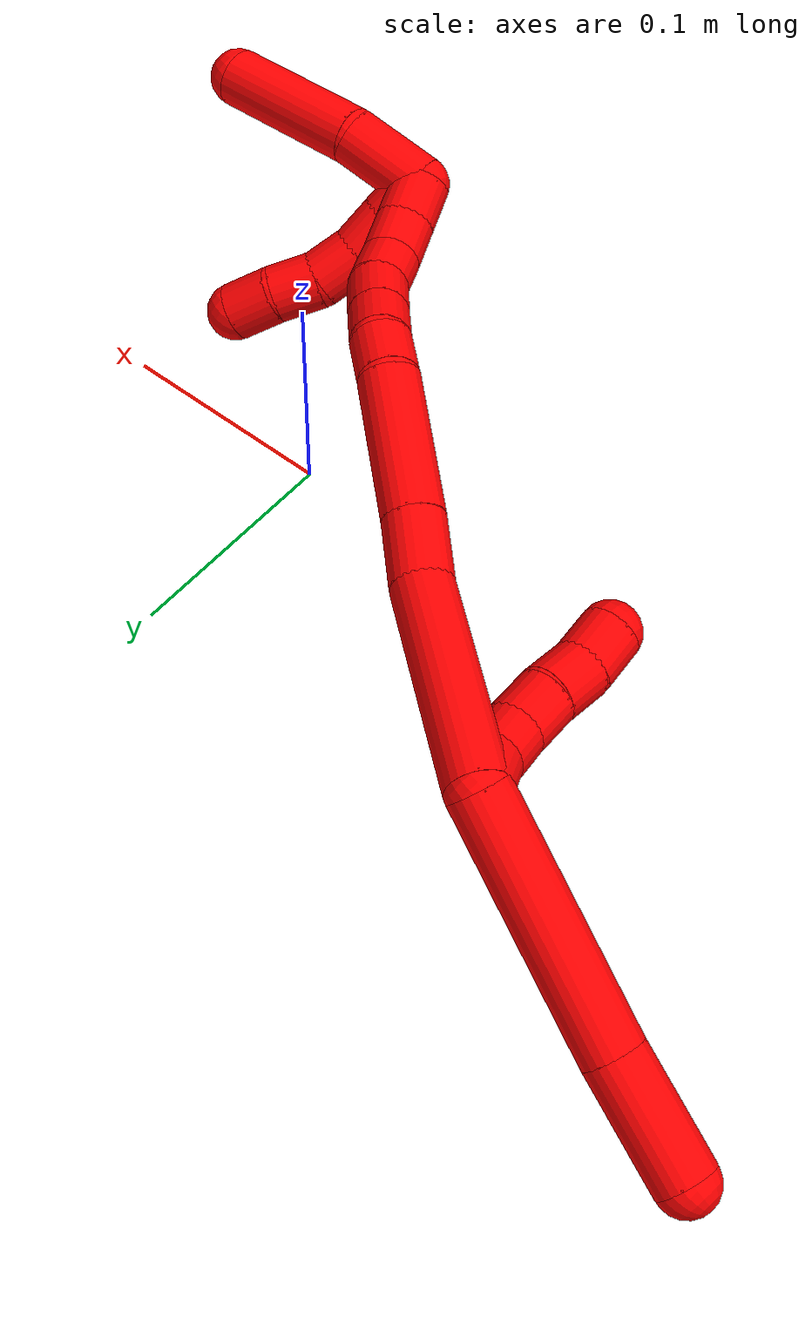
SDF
<sdf version="1.7">
 <world name="default">
  <model name="2">
   <static>0</static>
   <link name="2">
    <collision name="collision-cylinder-e_1_2_8">
     <pose>-0.003086 -0.016675 0.047732 0.336101 -0.060952 -0.010344</pose>
     <geometry><cylinder><radius>0.0125</radius><length>0.10131</length></cylinder></geometry>
     <surface>
      <friction><ode><mu>1.16</mu><mu2>1.16</mu2><slip1>0</slip1><slip2>0</slip2></ode></friction>
      <contact><ode><kp>1e+06</kp><kd>1</kd><max_vel>0</max_vel><min_depth>0.001</min_depth></ode></contact>
     </surface>
    </collision>
    <visual name="visual-cylinder-e_1_2_8">
     <pose>-0.003086 -0.016675 0.047732 0.336101 -0.060952 -0.010344</pose>
     <geometry><cylinder><radius>0.0125</radius><length>0.10131</length></cylinder></geometry>
     <material><ambient>1 0 0 1</ambient></material>
    </visual>
    <collision name="collision-cylinder-e_2_8_6">
     <pose>-0.008304 -0.039018 0.119044 0.235843 -0.087707 -0.010397</pose>
     <geometry><cylinder><radius>0.0125</radius><length>0.04869</length></cylinder></geometry>
     <surface>
      <friction><ode><mu>1.16</mu><mu2>1.16</mu2><slip1>0</slip1><slip2>0</slip2></ode></friction>
      <contact><ode><kp>1e+06</kp><kd>1</kd><max_vel>0</max_vel><min_depth>0.001</min_depth></ode></contact>
     </surface>
    </collision>
    <visual name="visual-cylinder-e_2_8_6">
     <pose>-0.008304 -0.039018 0.119044 0.235843 -0.087707 -0.010397</pose>
     <geometry><cylinder><radius>0.0125</radius><length>0.04869</length></cylinder></geometry>
     <material><ambient>1 0 0 1</ambient></material>
    </visual>
    <collision name="collision-cylinder-e_1_2_9">
     <pose>0.009045 -0.002629 -0.003358 2.47724 1.13021 2.14511</pose>
     <geometry><cylinder><radius>0.0125</radius><length>0.02</length></cylinder></geometry>
     <surface>
      <friction><ode><mu>1.16</mu><mu2>1.16</mu2><slip1>0</slip1><slip2>0</slip2></ode></friction>
      <contact><ode><kp>1e+06</kp><kd>1</kd><max_vel>0</max_vel><min_depth>0.001</min_depth></ode></contact>
     </surface>
    </collision>
    <visual name="visual-cylinder-e_1_2_9">
     <pose>0.009045 -0.002629 -0.003358 2.47724 1.13021 2.14511</pose>
     <geometry><cylinder><radius>0.0125</radius><length>0.02</length></cylinder></geometry>
     <material><ambient>1 0 0 1</ambient></material>
    </visual>
    <collision name="collision-cylinder-e_2_9_10">
     <pose>0.027907 -0.005641 -0.008582 2.93981 1.37904 2.89726</pose>
     <geometry><cylinder><radius>0.0125</radius><length>0.02</length></cylinder></geometry>
     <surface>
      <friction><ode><mu>1.16</mu><mu2>1.16</mu2><slip1>0</slip1><slip2>0</slip2></ode></friction>
      <contact><ode><kp>1e+06</kp><kd>1</kd><max_vel>0</max_vel><min_depth>0.001</min_depth></ode></contact>
     </surface>
    </collision>
    <visual name="visual-cylinder-e_2_9_10">
     <pose>0.027907 -0.005641 -0.008582 2.93981 1.37904 2.89726</pose>
     <geometry><cylinder><radius>0.0125</radius><length>0.02</length></cylinder></geometry>
     <material><ambient>1 0 0 1</ambient></material>
    </visual>
    <collision name="collision-cylinder-e_3_10_11">
     <pose>0.047244 -0.003204 -0.011638 -1.96988 1.25996 -1.6648</pose>
     <geometry><cylinder><radius>0.0125</radius><length>0.02</length></cylinder></geometry>
     <surface>
      <friction><ode><mu>1.16</mu><mu2>1.16</mu2><slip1>0</slip1><slip2>0</slip2></ode></friction>
      <contact><ode><kp>1e+06</kp><kd>1</kd><max_vel>0</max_vel><min_depth>0.001</min_depth></ode></contact>
     </surface>
    </collision>
    <visual name="visual-cylinder-e_3_10_11">
     <pose>0.047244 -0.003204 -0.011638 -1.96988 1.25996 -1.6648</pose>
     <geometry><cylinder><radius>0.0125</radius><length>0.02</length></cylinder></geometry>
     <material><ambient>1 0 0 1</ambient></material>
    </visual>
    <collision name="collision-cylinder-e_4_11_12">
     <pose>0.066621 0.001293 -0.013005 -1.67676 1.40109 -1.50647</pose>
     <geometry><cylinder><radius>0.0125</radius><length>0.02</length></cylinder></geometry>
     <surface>
      <friction><ode><mu>1.16</mu><mu2>1.16</mu2><slip1>0</slip1><slip2>0</slip2></ode></friction>
      <contact><ode><kp>1e+06</kp><kd>1</kd><max_vel>0</max_vel><min_depth>0.001</min_depth></ode></contact>
     </surface>
    </collision>
    <visual name="visual-cylinder-e_4_11_12">
     <pose>0.066621 0.001293 -0.013005 -1.67676 1.40109 -1.50647</pose>
     <geometry><cylinder><radius>0.0125</radius><length>0.02</length></cylinder></geometry>
     <material><ambient>1 0 0 1</ambient></material>
    </visual>
    <collision name="collision-cylinder-e_5_12_5">
     <pose>0.085825 0.006009 -0.015029 -2.11677 1.20754 -1.7732</pose>
     <geometry><cylinder><radius>0.0125</radius><length>0.02</length></cylinder></geometry>
     <surface>
      <friction><ode><mu>1.16</mu><mu2>1.16</mu2><slip1>0</slip1><slip2>0</slip2></ode></friction>
      <contact><ode><kp>1e+06</kp><kd>1</kd><max_vel>0</max_vel><min_depth>0.001</min_depth></ode></contact>
     </surface>
    </collision>
    <visual name="visual-cylinder-e_5_12_5">
     <pose>0.085825 0.006009 -0.015029 -2.11677 1.20754 -1.7732</pose>
     <geometry><cylinder><radius>0.0125</radius><length>0.02</length></cylinder></geometry>
     <material><ambient>1 0 0 1</ambient></material>
    </visual>
    <collision name="collision-cylinder-e_1_2_13">
     <pose>0.024346 -0.000176 -0.036475 3.13678 0.588551 3.1257</pose>
     <geometry><cylinder><radius>0.0125</radius><length>0.087707</length></cylinder></geometry>
     <surface>
      <friction><ode><mu>1.16</mu><mu2>1.16</mu2><slip1>0</slip1><slip2>0</slip2></ode></friction>
      <contact><ode><kp>1e+06</kp><kd>1</kd><max_vel>0</max_vel><min_depth>0.001</min_depth></ode></contact>
     </surface>
    </collision>
    <visual name="visual-cylinder-e_1_2_13">
     <pose>0.024346 -0.000176 -0.036475 3.13678 0.588551 3.1257</pose>
     <geometry><cylinder><radius>0.0125</radius><length>0.087707</length></cylinder></geometry>
     <material><ambient>1 0 0 1</ambient></material>
    </visual>
    <collision name="collision-cylinder-e_2_13_14">
     <pose>0.056588 0.00232 -0.08426 -2.90965 0.596793 -2.41751</pose>
     <geometry><cylinder><radius>0.0125</radius><length>0.028103</length></cylinder></geometry>
     <surface>
      <friction><ode><mu>1.16</mu><mu2>1.16</mu2><slip1>0</slip1><slip2>0</slip2></ode></friction>
      <contact><ode><kp>1e+06</kp><kd>1</kd><max_vel>0</max_vel><min_depth>0.001</min_depth></ode></contact>
     </surface>
    </collision>
    <visual name="visual-cylinder-e_2_13_14">
     <pose>0.056588 0.00232 -0.08426 -2.90965 0.596793 -2.41751</pose>
     <geometry><cylinder><radius>0.0125</radius><length>0.028103</length></cylinder></geometry>
     <material><ambient>1 0 0 1</ambient></material>
    </visual>
    <collision name="collision-cylinder-e_3_14_15">
     <pose>0.080836 0.010378 -0.121259 -2.9349 0.557161 -2.44584</pose>
     <geometry><cylinder><radius>0.0125</radius><length>0.061846</length></cylinder></geometry>
     <surface>
      <friction><ode><mu>1.16</mu><mu2>1.16</mu2><slip1>0</slip1><slip2>0</slip2></ode></friction>
      <contact><ode><kp>1e+06</kp><kd>1</kd><max_vel>0</max_vel><min_depth>0.001</min_depth></ode></contact>
     </surface>
    </collision>
    <visual name="visual-cylinder-e_3_14_15">
     <pose>0.080836 0.010378 -0.121259 -2.9349 0.557161 -2.44584</pose>
     <geometry><cylinder><radius>0.0125</radius><length>0.061846</length></cylinder></geometry>
     <material><ambient>1 0 0 1</ambient></material>
    </visual>
    <collision name="collision-cylinder-e_4_15_16">
     <pose>0.103423 0.015565 -0.155057 3.11697 0.655365 3.06918</pose>
     <geometry><cylinder><radius>0.0125</radius><length>0.020464</length></cylinder></geometry>
     <surface>
      <friction><ode><mu>1.16</mu><mu2>1.16</mu2><slip1>0</slip1><slip2>0</slip2></ode></friction>
      <contact><ode><kp>1e+06</kp><kd>1</kd><max_vel>0</max_vel><min_depth>0.001</min_depth></ode></contact>
     </surface>
    </collision>
    <visual name="visual-cylinder-e_4_15_16">
     <pose>0.103423 0.015565 -0.155057 3.11697 0.655365 3.06918</pose>
     <geometry><cylinder><radius>0.0125</radius><length>0.020464</length></cylinder></geometry>
     <material><ambient>1 0 0 1</ambient></material>
    </visual>
    <collision name="collision-cylinder-e_5_16_17">
     <pose>0.117134 0.013515 -0.169742 2.86727 0.830377 2.53469</pose>
     <geometry><cylinder><radius>0.0125</radius><length>0.020252</length></cylinder></geometry>
     <surface>
      <friction><ode><mu>1.16</mu><mu2>1.16</mu2><slip1>0</slip1><slip2>0</slip2></ode></friction>
      <contact><ode><kp>1e+06</kp><kd>1</kd><max_vel>0</max_vel><min_depth>0.001</min_depth></ode></contact>
     </surface>
    </collision>
    <visual name="visual-cylinder-e_5_16_17">
     <pose>0.117134 0.013515 -0.169742 2.86727 0.830377 2.53469</pose>
     <geometry><cylinder><radius>0.0125</radius><length>0.020252</length></cylinder></geometry>
     <material><ambient>1 0 0 1</ambient></material>
    </visual>
    <collision name="collision-cylinder-e_6_17_18">
     <pose>0.132589 0.009902 -0.18311 2.88769 0.849488 2.59147</pose>
     <geometry><cylinder><radius>0.0125</radius><length>0.021254</length></cylinder></geometry>
     <surface>
      <friction><ode><mu>1.16</mu><mu2>1.16</mu2><slip1>0</slip1><slip2>0</slip2></ode></friction>
      <contact><ode><kp>1e+06</kp><kd>1</kd><max_vel>0</max_vel><min_depth>0.001</min_depth></ode></contact>
     </surface>
    </collision>
    <visual name="visual-cylinder-e_6_17_18">
     <pose>0.132589 0.009902 -0.18311 2.88769 0.849488 2.59147</pose>
     <geometry><cylinder><radius>0.0125</radius><length>0.021254</length></cylinder></geometry>
     <material><ambient>1 0 0 1</ambient></material>
    </visual>
    <collision name="collision-cylinder-e_7_18_19">
     <pose>0.14957 0.007988 -0.194518 3.109 1.09674 3.08824</pose>
     <geometry><cylinder><radius>0.0125</radius><length>0.020232</length></cylinder></geometry>
     <surface>
      <friction><ode><mu>1.16</mu><mu2>1.16</mu2><slip1>0</slip1><slip2>0</slip2></ode></friction>
      <contact><ode><kp>1e+06</kp><kd>1</kd><max_vel>0</max_vel><min_depth>0.001</min_depth></ode></contact>
     </surface>
    </collision>
    <visual name="visual-cylinder-e_7_18_19">
     <pose>0.14957 0.007988 -0.194518 3.109 1.09674 3.08824</pose>
     <geometry><cylinder><radius>0.0125</radius><length>0.020232</length></cylinder></geometry>
     <material><ambient>1 0 0 1</ambient></material>
    </visual>
    <collision name="collision-cylinder-e_8_19_20">
     <pose>0.166777 0.010752 -0.2041 -2.61092 0.958943 -2.17839</pose>
     <geometry><cylinder><radius>0.0125</radius><length>0.020051</length></cylinder></geometry>
     <surface>
      <friction><ode><mu>1.16</mu><mu2>1.16</mu2><slip1>0</slip1><slip2>0</slip2></ode></friction>
      <contact><ode><kp>1e+06</kp><kd>1</kd><max_vel>0</max_vel><min_depth>0.001</min_depth></ode></contact>
     </surface>
    </collision>
    <visual name="visual-cylinder-e_8_19_20">
     <pose>0.166777 0.010752 -0.2041 -2.61092 0.958943 -2.17839</pose>
     <geometry><cylinder><radius>0.0125</radius><length>0.020051</length></cylinder></geometry>
     <material><ambient>1 0 0 1</ambient></material>
    </visual>
    <collision name="collision-cylinder-e_9_20_1">
     <pose>0.182497 0.01828 -0.213882 -2.37765 0.844863 -1.68297</pose>
     <geometry><cylinder><radius>0.0125</radius><length>0.020091</length></cylinder></geometry>
     <surface>
      <friction><ode><mu>1.16</mu><mu2>1.16</mu2><slip1>0</slip1><slip2>0</slip2></ode></friction>
      <contact><ode><kp>1e+06</kp><kd>1</kd><max_vel>0</max_vel><min_depth>0.001</min_depth></ode></contact>
     </surface>
    </collision>
    <visual name="visual-cylinder-e_9_20_1">
     <pose>0.182497 0.01828 -0.213882 -2.37765 0.844863 -1.68297</pose>
     <geometry><cylinder><radius>0.0125</radius><length>0.020091</length></cylinder></geometry>
     <material><ambient>1 0 0 1</ambient></material>
    </visual>
    <collision name="collision-cylinder-e_1_1_21">
     <pose>0.186776 0.021756 -0.236481 3.07771 -0.179499 -2.45922</pose>
     <geometry><cylinder><radius>0.0125</radius><length>0.03622</length></cylinder></geometry>
     <surface>
      <friction><ode><mu>1.16</mu><mu2>1.16</mu2><slip1>0</slip1><slip2>0</slip2></ode></friction>
      <contact><ode><kp>1e+06</kp><kd>1</kd><max_vel>0</max_vel><min_depth>0.001</min_depth></ode></contact>
     </surface>
    </collision>
    <visual name="visual-cylinder-e_1_1_21">
     <pose>0.186776 0.021756 -0.236481 3.07771 -0.179499 -2.45922</pose>
     <geometry><cylinder><radius>0.0125</radius><length>0.03622</length></cylinder></geometry>
     <material><ambient>1 0 0 1</ambient></material>
    </visual>
    <collision name="collision-cylinder-e_2_21_4">
     <pose>0.182198 0.011142 -0.284683 2.83963 -0.042195 -0.275628</pose>
     <geometry><cylinder><radius>0.0125</radius><length>0.06378</length></cylinder></geometry>
     <surface>
      <friction><ode><mu>1.16</mu><mu2>1.16</mu2><slip1>0</slip1><slip2>0</slip2></ode></friction>
      <contact><ode><kp>1e+06</kp><kd>1</kd><max_vel>0</max_vel><min_depth>0.001</min_depth></ode></contact>
     </surface>
    </collision>
    <visual name="visual-cylinder-e_2_21_4">
     <pose>0.182198 0.011142 -0.284683 2.83963 -0.042195 -0.275628</pose>
     <geometry><cylinder><radius>0.0125</radius><length>0.06378</length></cylinder></geometry>
     <material><ambient>1 0 0 1</ambient></material>
    </visual>
    <collision name="collision-cylinder-e_1_1_22">
     <pose>0.1861 0.013718 -0.21942 1.6493 -0.401709 -0.433567</pose>
     <geometry><cylinder><radius>0.0125</radius><length>0.02</length></cylinder></geometry>
     <surface>
      <friction><ode><mu>1.16</mu><mu2>1.16</mu2><slip1>0</slip1><slip2>0</slip2></ode></friction>
      <contact><ode><kp>1e+06</kp><kd>1</kd><max_vel>0</max_vel><min_depth>0.001</min_depth></ode></contact>
     </surface>
    </collision>
    <visual name="visual-cylinder-e_1_1_22">
     <pose>0.1861 0.013718 -0.21942 1.6493 -0.401709 -0.433567</pose>
     <geometry><cylinder><radius>0.0125</radius><length>0.02</length></cylinder></geometry>
     <material><ambient>1 0 0 1</ambient></material>
    </visual>
    <collision name="collision-cylinder-e_2_22_23">
     <pose>0.177066 -0.004045 -0.220085 1.56422 -0.537956 -0.534594</pose>
     <geometry><cylinder><radius>0.0125</radius><length>0.02</length></cylinder></geometry>
     <surface>
      <friction><ode><mu>1.16</mu><mu2>1.16</mu2><slip1>0</slip1><slip2>0</slip2></ode></friction>
      <contact><ode><kp>1e+06</kp><kd>1</kd><max_vel>0</max_vel><min_depth>0.001</min_depth></ode></contact>
     </surface>
    </collision>
    <visual name="visual-cylinder-e_2_22_23">
     <pose>0.177066 -0.004045 -0.220085 1.56422 -0.537956 -0.534594</pose>
     <geometry><cylinder><radius>0.0125</radius><length>0.02</length></cylinder></geometry>
     <material><ambient>1 0 0 1</ambient></material>
    </visual>
    <collision name="collision-cylinder-e_3_23_24">
     <pose>0.165888 -0.020349 -0.221982 1.81873 -0.650236 -0.817326</pose>
     <geometry><cylinder><radius>0.0125</radius><length>0.02</length></cylinder></geometry>
     <surface>
      <friction><ode><mu>1.16</mu><mu2>1.16</mu2><slip1>0</slip1><slip2>0</slip2></ode></friction>
      <contact><ode><kp>1e+06</kp><kd>1</kd><max_vel>0</max_vel><min_depth>0.001</min_depth></ode></contact>
     </surface>
    </collision>
    <visual name="visual-cylinder-e_3_23_24">
     <pose>0.165888 -0.020349 -0.221982 1.81873 -0.650236 -0.817326</pose>
     <geometry><cylinder><radius>0.0125</radius><length>0.02</length></cylinder></geometry>
     <material><ambient>1 0 0 1</ambient></material>
    </visual>
    <collision name="collision-cylinder-e_4_24_25">
     <pose>0.153983 -0.034765 -0.228503 2.16917 -0.625035 -1.09742</pose>
     <geometry><cylinder><radius>0.0125</radius><length>0.02</length></cylinder></geometry>
     <surface>
      <friction><ode><mu>1.16</mu><mu2>1.16</mu2><slip1>0</slip1><slip2>0</slip2></ode></friction>
      <contact><ode><kp>1e+06</kp><kd>1</kd><max_vel>0</max_vel><min_depth>0.001</min_depth></ode></contact>
     </surface>
    </collision>
    <visual name="visual-cylinder-e_4_24_25">
     <pose>0.153983 -0.034765 -0.228503 2.16917 -0.625035 -1.09742</pose>
     <geometry><cylinder><radius>0.0125</radius><length>0.02</length></cylinder></geometry>
     <material><ambient>1 0 0 1</ambient></material>
    </visual>
    <collision name="collision-cylinder-e_5_25_3">
     <pose>0.143743 -0.049376 -0.237333 2.06497 -0.454439 -0.738848</pose>
     <geometry><cylinder><radius>0.0125</radius><length>0.02</length></cylinder></geometry>
     <surface>
      <friction><ode><mu>1.16</mu><mu2>1.16</mu2><slip1>0</slip1><slip2>0</slip2></ode></friction>
      <contact><ode><kp>1e+06</kp><kd>1</kd><max_vel>0</max_vel><min_depth>0.001</min_depth></ode></contact>
     </surface>
    </collision>
    <visual name="visual-cylinder-e_5_25_3">
     <pose>0.143743 -0.049376 -0.237333 2.06497 -0.454439 -0.738848</pose>
     <geometry><cylinder><radius>0.0125</radius><length>0.02</length></cylinder></geometry>
     <material><ambient>1 0 0 1</ambient></material>
    </visual>
    <collision name="collision-sphere-3">
     <pose>0.139353 -0.057286 -0.241594 0 -0 0</pose>
     <geometry><sphere><radius>0.0125</radius></sphere></geometry>
     <surface>
      <friction><ode><mu>1.16</mu><mu2>1.16</mu2><slip1>0</slip1><slip2>0</slip2></ode></friction>
      <contact><ode><kp>1e+06</kp><kd>1</kd><max_vel>0</max_vel><min_depth>0.001</min_depth></ode></contact>
     </surface>
    </collision>
    <visual name="visual-sphere-3">
     <pose>0.139353 -0.057286 -0.241594 0 -0 0</pose>
     <geometry><sphere><radius>0.0125</radius></sphere></geometry>
     <material><ambient>1 0 0 1</ambient></material>
    </visual>
    <collision name="collision-sphere-25">
     <pose>0.148132 -0.041466 -0.233071 0 -0 0</pose>
     <geometry><sphere><radius>0.0125</radius></sphere></geometry>
     <surface>
      <friction><ode><mu>1.16</mu><mu2>1.16</mu2><slip1>0</slip1><slip2>0</slip2></ode></friction>
      <contact><ode><kp>1e+06</kp><kd>1</kd><max_vel>0</max_vel><min_depth>0.001</min_depth></ode></contact>
     </surface>
    </collision>
    <visual name="visual-sphere-25">
     <pose>0.148132 -0.041466 -0.233071 0 -0 0</pose>
     <geometry><sphere><radius>0.0125</radius></sphere></geometry>
     <material><ambient>1 0 0 1</ambient></material>
    </visual>
    <collision name="collision-sphere-24">
     <pose>0.159835 -0.028065 -0.223935 0 -0 0</pose>
     <geometry><sphere><radius>0.0125</radius></sphere></geometry>
     <surface>
      <friction><ode><mu>1.16</mu><mu2>1.16</mu2><slip1>0</slip1><slip2>0</slip2></ode></friction>
      <contact><ode><kp>1e+06</kp><kd>1</kd><max_vel>0</max_vel><min_depth>0.001</min_depth></ode></contact>
     </surface>
    </collision>
    <visual name="visual-sphere-24">
     <pose>0.159835 -0.028065 -0.223935 0 -0 0</pose>
     <geometry><sphere><radius>0.0125</radius></sphere></geometry>
     <material><ambient>1 0 0 1</ambient></material>
    </visual>
    <collision name="collision-sphere-23">
     <pose>0.171942 -0.012633 -0.220028 0 -0 0</pose>
     <geometry><sphere><radius>0.0125</radius></sphere></geometry>
     <surface>
      <friction><ode><mu>1.16</mu><mu2>1.16</mu2><slip1>0</slip1><slip2>0</slip2></ode></friction>
      <contact><ode><kp>1e+06</kp><kd>1</kd><max_vel>0</max_vel><min_depth>0.001</min_depth></ode></contact>
     </surface>
    </collision>
    <visual name="visual-sphere-23">
     <pose>0.171942 -0.012633 -0.220028 0 -0 0</pose>
     <geometry><sphere><radius>0.0125</radius></sphere></geometry>
     <material><ambient>1 0 0 1</ambient></material>
    </visual>
    <collision name="collision-sphere-22">
     <pose>0.18219 0.004542 -0.220141 0 -0 0</pose>
     <geometry><sphere><radius>0.0125</radius></sphere></geometry>
     <surface>
      <friction><ode><mu>1.16</mu><mu2>1.16</mu2><slip1>0</slip1><slip2>0</slip2></ode></friction>
      <contact><ode><kp>1e+06</kp><kd>1</kd><max_vel>0</max_vel><min_depth>0.001</min_depth></ode></contact>
     </surface>
    </collision>
    <visual name="visual-sphere-22">
     <pose>0.18219 0.004542 -0.220141 0 -0 0</pose>
     <geometry><sphere><radius>0.0125</radius></sphere></geometry>
     <material><ambient>1 0 0 1</ambient></material>
    </visual>
    <collision name="collision-sphere-4">
     <pose>0.180853 0.001667 -0.315103 0 -0 0</pose>
     <geometry><sphere><radius>0.0125</radius></sphere></geometry>
     <surface>
      <friction><ode><mu>1.16</mu><mu2>1.16</mu2><slip1>0</slip1><slip2>0</slip2></ode></friction>
      <contact><ode><kp>1e+06</kp><kd>1</kd><max_vel>0</max_vel><min_depth>0.001</min_depth></ode></contact>
     </surface>
    </collision>
    <visual name="visual-sphere-4">
     <pose>0.180853 0.001667 -0.315103 0 -0 0</pose>
     <geometry><sphere><radius>0.0125</radius></sphere></geometry>
     <material><ambient>1 0 0 1</ambient></material>
    </visual>
    <collision name="collision-sphere-21">
     <pose>0.183543 0.020618 -0.254263 0 -0 0</pose>
     <geometry><sphere><radius>0.0125</radius></sphere></geometry>
     <surface>
      <friction><ode><mu>1.16</mu><mu2>1.16</mu2><slip1>0</slip1><slip2>0</slip2></ode></friction>
      <contact><ode><kp>1e+06</kp><kd>1</kd><max_vel>0</max_vel><min_depth>0.001</min_depth></ode></contact>
     </surface>
    </collision>
    <visual name="visual-sphere-21">
     <pose>0.183543 0.020618 -0.254263 0 -0 0</pose>
     <geometry><sphere><radius>0.0125</radius></sphere></geometry>
     <material><ambient>1 0 0 1</ambient></material>
    </visual>
    <collision name="collision-sphere-1">
     <pose>0.19001 0.022893 -0.218698 0 -0 0</pose>
     <geometry><sphere><radius>0.0125</radius></sphere></geometry>
     <surface>
      <friction><ode><mu>1.16</mu><mu2>1.16</mu2><slip1>0</slip1><slip2>0</slip2></ode></friction>
      <contact><ode><kp>1e+06</kp><kd>1</kd><max_vel>0</max_vel><min_depth>0.001</min_depth></ode></contact>
     </surface>
    </collision>
    <visual name="visual-sphere-1">
     <pose>0.19001 0.022893 -0.218698 0 -0 0</pose>
     <geometry><sphere><radius>0.0125</radius></sphere></geometry>
     <material><ambient>1 0 0 1</ambient></material>
    </visual>
    <collision name="collision-sphere-11">
     <pose>0.056765 -0.000386 -0.012827 0 -0 0</pose>
     <geometry><sphere><radius>0.0125</radius></sphere></geometry>
     <surface>
      <friction><ode><mu>1.16</mu><mu2>1.16</mu2><slip1>0</slip1><slip2>0</slip2></ode></friction>
      <contact><ode><kp>1e+06</kp><kd>1</kd><max_vel>0</max_vel><min_depth>0.001</min_depth></ode></contact>
     </surface>
    </collision>
    <visual name="visual-sphere-11">
     <pose>0.056765 -0.000386 -0.012827 0 -0 0</pose>
     <geometry><sphere><radius>0.0125</radius></sphere></geometry>
     <material><ambient>1 0 0 1</ambient></material>
    </visual>
    <collision name="collision-sphere-10">
     <pose>0.037724 -0.006023 -0.01045 0 -0 0</pose>
     <geometry><sphere><radius>0.0125</radius></sphere></geometry>
     <surface>
      <friction><ode><mu>1.16</mu><mu2>1.16</mu2><slip1>0</slip1><slip2>0</slip2></ode></friction>
      <contact><ode><kp>1e+06</kp><kd>1</kd><max_vel>0</max_vel><min_depth>0.001</min_depth></ode></contact>
     </surface>
    </collision>
    <visual name="visual-sphere-10">
     <pose>0.037724 -0.006023 -0.01045 0 -0 0</pose>
     <geometry><sphere><radius>0.0125</radius></sphere></geometry>
     <material><ambient>1 0 0 1</ambient></material>
    </visual>
    <collision name="collision-sphere-6">
     <pose>-0.010436 -0.044684 0.142624 0 -0 0</pose>
     <geometry><sphere><radius>0.0125</radius></sphere></geometry>
     <surface>
      <friction><ode><mu>1.16</mu><mu2>1.16</mu2><slip1>0</slip1><slip2>0</slip2></ode></friction>
      <contact><ode><kp>1e+06</kp><kd>1</kd><max_vel>0</max_vel><min_depth>0.001</min_depth></ode></contact>
     </surface>
    </collision>
    <visual name="visual-sphere-6">
     <pose>-0.010436 -0.044684 0.142624 0 -0 0</pose>
     <geometry><sphere><radius>0.0125</radius></sphere></geometry>
     <material><ambient>1 0 0 1</ambient></material>
    </visual>
    <collision name="collision-sphere-9">
     <pose>0.01809 -0.005259 -0.006715 0 -0 0</pose>
     <geometry><sphere><radius>0.0125</radius></sphere></geometry>
     <surface>
      <friction><ode><mu>1.16</mu><mu2>1.16</mu2><slip1>0</slip1><slip2>0</slip2></ode></friction>
      <contact><ode><kp>1e+06</kp><kd>1</kd><max_vel>0</max_vel><min_depth>0.001</min_depth></ode></contact>
     </surface>
    </collision>
    <visual name="visual-sphere-9">
     <pose>0.01809 -0.005259 -0.006715 0 -0 0</pose>
     <geometry><sphere><radius>0.0125</radius></sphere></geometry>
     <material><ambient>1 0 0 1</ambient></material>
    </visual>
    <collision name="collision-sphere-2">
     <geometry><sphere><radius>0.0125</radius></sphere></geometry>
     <surface>
      <friction><ode><mu>1.16</mu><mu2>1.16</mu2><slip1>0</slip1><slip2>0</slip2></ode></friction>
      <contact><ode><kp>1e+06</kp><kd>1</kd><max_vel>0</max_vel><min_depth>0.001</min_depth></ode></contact>
     </surface>
    </collision>
    <visual name="visual-sphere-2">
     <geometry><sphere><radius>0.0125</radius></sphere></geometry>
     <material><ambient>1 0 0 1</ambient></material>
    </visual>
    <collision name="collision-sphere-19">
     <pose>0.15857 0.007838 -0.199134 0 -0 0</pose>
     <geometry><sphere><radius>0.0125</radius></sphere></geometry>
     <surface>
      <friction><ode><mu>1.16</mu><mu2>1.16</mu2><slip1>0</slip1><slip2>0</slip2></ode></friction>
      <contact><ode><kp>1e+06</kp><kd>1</kd><max_vel>0</max_vel><min_depth>0.001</min_depth></ode></contact>
     </surface>
    </collision>
    <visual name="visual-sphere-19">
     <pose>0.15857 0.007838 -0.199134 0 -0 0</pose>
     <geometry><sphere><radius>0.0125</radius></sphere></geometry>
     <material><ambient>1 0 0 1</ambient></material>
    </visual>
    <collision name="collision-sphere-8">
     <pose>-0.006171 -0.033351 0.095464 0 -0 0</pose>
     <geometry><sphere><radius>0.0125</radius></sphere></geometry>
     <surface>
      <friction><ode><mu>1.16</mu><mu2>1.16</mu2><slip1>0</slip1><slip2>0</slip2></ode></friction>
      <contact><ode><kp>1e+06</kp><kd>1</kd><max_vel>0</max_vel><min_depth>0.001</min_depth></ode></contact>
     </surface>
    </collision>
    <visual name="visual-sphere-8">
     <pose>-0.006171 -0.033351 0.095464 0 -0 0</pose>
     <geometry><sphere><radius>0.0125</radius></sphere></geometry>
     <material><ambient>1 0 0 1</ambient></material>
    </visual>
    <collision name="collision-sphere-12">
     <pose>0.076478 0.002973 -0.013184 0 -0 0</pose>
     <geometry><sphere><radius>0.0125</radius></sphere></geometry>
     <surface>
      <friction><ode><mu>1.16</mu><mu2>1.16</mu2><slip1>0</slip1><slip2>0</slip2></ode></friction>
      <contact><ode><kp>1e+06</kp><kd>1</kd><max_vel>0</max_vel><min_depth>0.001</min_depth></ode></contact>
     </surface>
    </collision>
    <visual name="visual-sphere-12">
     <pose>0.076478 0.002973 -0.013184 0 -0 0</pose>
     <geometry><sphere><radius>0.0125</radius></sphere></geometry>
     <material><ambient>1 0 0 1</ambient></material>
    </visual>
    <collision name="collision-sphere-5">
     <pose>0.095173 0.009046 -0.016874 0 -0 0</pose>
     <geometry><sphere><radius>0.0125</radius></sphere></geometry>
     <surface>
      <friction><ode><mu>1.16</mu><mu2>1.16</mu2><slip1>0</slip1><slip2>0</slip2></ode></friction>
      <contact><ode><kp>1e+06</kp><kd>1</kd><max_vel>0</max_vel><min_depth>0.001</min_depth></ode></contact>
     </surface>
    </collision>
    <visual name="visual-sphere-5">
     <pose>0.095173 0.009046 -0.016874 0 -0 0</pose>
     <geometry><sphere><radius>0.0125</radius></sphere></geometry>
     <material><ambient>1 0 0 1</ambient></material>
    </visual>
    <collision name="collision-sphere-13">
     <pose>0.048691 -0.000351 -0.072949 0 -0 0</pose>
     <geometry><sphere><radius>0.0125</radius></sphere></geometry>
     <surface>
      <friction><ode><mu>1.16</mu><mu2>1.16</mu2><slip1>0</slip1><slip2>0</slip2></ode></friction>
      <contact><ode><kp>1e+06</kp><kd>1</kd><max_vel>0</max_vel><min_depth>0.001</min_depth></ode></contact>
     </surface>
    </collision>
    <visual name="visual-sphere-13">
     <pose>0.048691 -0.000351 -0.072949 0 -0 0</pose>
     <geometry><sphere><radius>0.0125</radius></sphere></geometry>
     <material><ambient>1 0 0 1</ambient></material>
    </visual>
    <collision name="collision-sphere-14">
     <pose>0.064485 0.004992 -0.095572 0 -0 0</pose>
     <geometry><sphere><radius>0.0125</radius></sphere></geometry>
     <surface>
      <friction><ode><mu>1.16</mu><mu2>1.16</mu2><slip1>0</slip1><slip2>0</slip2></ode></friction>
      <contact><ode><kp>1e+06</kp><kd>1</kd><max_vel>0</max_vel><min_depth>0.001</min_depth></ode></contact>
     </surface>
    </collision>
    <visual name="visual-sphere-14">
     <pose>0.064485 0.004992 -0.095572 0 -0 0</pose>
     <geometry><sphere><radius>0.0125</radius></sphere></geometry>
     <material><ambient>1 0 0 1</ambient></material>
    </visual>
    <collision name="collision-sphere-15">
     <pose>0.097188 0.015765 -0.146947 0 -0 0</pose>
     <geometry><sphere><radius>0.0125</radius></sphere></geometry>
     <surface>
      <friction><ode><mu>1.16</mu><mu2>1.16</mu2><slip1>0</slip1><slip2>0</slip2></ode></friction>
      <contact><ode><kp>1e+06</kp><kd>1</kd><max_vel>0</max_vel><min_depth>0.001</min_depth></ode></contact>
     </surface>
    </collision>
    <visual name="visual-sphere-15">
     <pose>0.097188 0.015765 -0.146947 0 -0 0</pose>
     <geometry><sphere><radius>0.0125</radius></sphere></geometry>
     <material><ambient>1 0 0 1</ambient></material>
    </visual>
    <collision name="collision-sphere-16">
     <pose>0.109659 0.015365 -0.163166 0 -0 0</pose>
     <geometry><sphere><radius>0.0125</radius></sphere></geometry>
     <surface>
      <friction><ode><mu>1.16</mu><mu2>1.16</mu2><slip1>0</slip1><slip2>0</slip2></ode></friction>
      <contact><ode><kp>1e+06</kp><kd>1</kd><max_vel>0</max_vel><min_depth>0.001</min_depth></ode></contact>
     </surface>
    </collision>
    <visual name="visual-sphere-16">
     <pose>0.109659 0.015365 -0.163166 0 -0 0</pose>
     <geometry><sphere><radius>0.0125</radius></sphere></geometry>
     <material><ambient>1 0 0 1</ambient></material>
    </visual>
    <collision name="collision-sphere-17">
     <pose>0.124609 0.011664 -0.176317 0 -0 0</pose>
     <geometry><sphere><radius>0.0125</radius></sphere></geometry>
     <surface>
      <friction><ode><mu>1.16</mu><mu2>1.16</mu2><slip1>0</slip1><slip2>0</slip2></ode></friction>
      <contact><ode><kp>1e+06</kp><kd>1</kd><max_vel>0</max_vel><min_depth>0.001</min_depth></ode></contact>
     </surface>
    </collision>
    <visual name="visual-sphere-17">
     <pose>0.124609 0.011664 -0.176317 0 -0 0</pose>
     <geometry><sphere><radius>0.0125</radius></sphere></geometry>
     <material><ambient>1 0 0 1</ambient></material>
    </visual>
    <collision name="collision-sphere-18">
     <pose>0.14057 0.008139 -0.189903 0 -0 0</pose>
     <geometry><sphere><radius>0.0125</radius></sphere></geometry>
     <surface>
      <friction><ode><mu>1.16</mu><mu2>1.16</mu2><slip1>0</slip1><slip2>0</slip2></ode></friction>
      <contact><ode><kp>1e+06</kp><kd>1</kd><max_vel>0</max_vel><min_depth>0.001</min_depth></ode></contact>
     </surface>
    </collision>
    <visual name="visual-sphere-18">
     <pose>0.14057 0.008139 -0.189903 0 -0 0</pose>
     <geometry><sphere><radius>0.0125</radius></sphere></geometry>
     <material><ambient>1 0 0 1</ambient></material>
    </visual>
    <collision name="collision-sphere-20">
     <pose>0.174984 0.013667 -0.209067 0 -0 0</pose>
     <geometry><sphere><radius>0.0125</radius></sphere></geometry>
     <surface>
      <friction><ode><mu>1.16</mu><mu2>1.16</mu2><slip1>0</slip1><slip2>0</slip2></ode></friction>
      <contact><ode><kp>1e+06</kp><kd>1</kd><max_vel>0</max_vel><min_depth>0.001</min_depth></ode></contact>
     </surface>
    </collision>
    <visual name="visual-sphere-20">
     <pose>0.174984 0.013667 -0.209067 0 -0 0</pose>
     <geometry><sphere><radius>0.0125</radius></sphere></geometry>
     <material><ambient>1 0 0 1</ambient></material>
    </visual>
    <inertial>
     <pose>0.086674 -0.002442 -0.100751 0 -0 0</pose>
     <mass>0.75</mass>
     <inertia>
      <ixx>4.3e-05</ixx>
      <ixy>0</ixy>
      <ixz>0</ixz>
      <iyy>0.000137</iyy>
      <iyz>0</iyz>
      <izz>-2.4e-05</izz>
     </inertia>
    </inertial>
   </link>
   <pose>-0.18592 0.121863 0.084422 1.83762 0.331166 -1.59961</pose>
  </model>
 </world>
</sdf>
